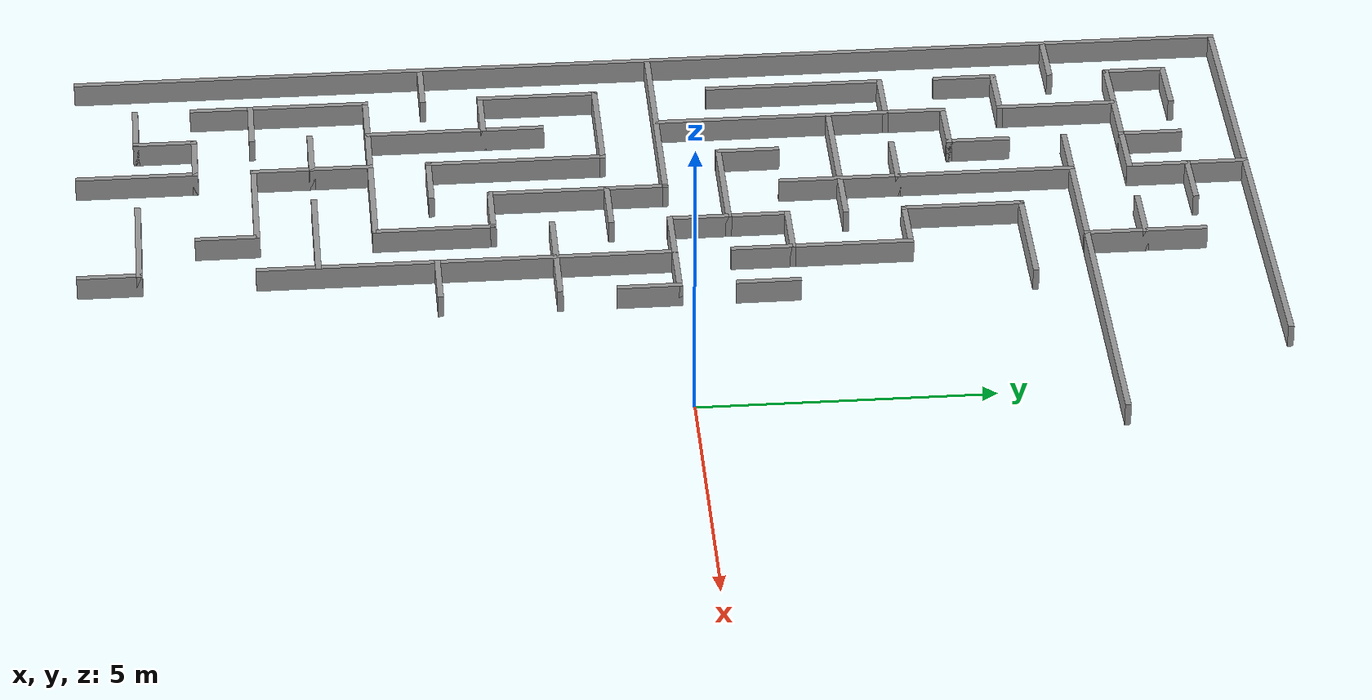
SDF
<sdf version="1.7">
 <model name="turtlebot3_maze_3">
  <link name="Wall_10">
   <collision name="Wall_10_Collision">
    <geometry><box><size>1.1 0.1 0.4</size></box></geometry>
    <pose>0 0 0.2 0 -0 0</pose>
   </collision>
   <visual name="Wall_10_Visual">
    <pose>0 0 0.2 0 -0 0</pose>
    <geometry><box><size>1.1 0.1 0.4</size></box></geometry>
    <material>
     <script><uri>file://media/materials/scripts/gazebo.material</uri><name>Gazebo/Grey</name></script>
     <ambient>1 1 1 1</ambient>
    </material>
    <meta><layer>0</layer></meta>
   </visual>
   <pose>-3 1.5 0 0 -0 1.5708</pose>
  </link>
  <link name="Wall_100">
   <collision name="Wall_100_Collision">
    <geometry><box><size>4.1 0.1 0.4</size></box></geometry>
    <pose>0 0 0.2 0 -0 0</pose>
   </collision>
   <visual name="Wall_100_Visual">
    <pose>0 0 0.2 0 -0 0</pose>
    <geometry><box><size>4.1 0.1 0.4</size></box></geometry>
    <material>
     <script><uri>file://media/materials/scripts/gazebo.material</uri><name>Gazebo/Grey</name></script>
     <ambient>1 1 1 1</ambient>
    </material>
    <meta><layer>0</layer></meta>
   </visual>
   <pose>-8 0 0 0 -0 3.14159</pose>
  </link>
  <link name="Wall_102">
   <collision name="Wall_102_Collision">
    <geometry><box><size>1.1 0.1 0.4</size></box></geometry>
    <pose>0 0 0.2 0 -0 0</pose>
   </collision>
   <visual name="Wall_102_Visual">
    <pose>0 0 0.2 0 -0 0</pose>
    <geometry><box><size>1.1 0.1 0.4</size></box></geometry>
    <material>
     <script><uri>file://media/materials/scripts/gazebo.material</uri><name>Gazebo/Grey</name></script>
     <ambient>1 1 1 1</ambient>
    </material>
    <meta><layer>0</layer></meta>
   </visual>
   <pose>-6.5 -4 0 0 -0 3.14159</pose>
  </link>
  <link name="Wall_103">
   <collision name="Wall_103_Collision">
    <geometry><box><size>3.1 0.1 0.4</size></box></geometry>
    <pose>0 0 0.2 0 -0 0</pose>
   </collision>
   <visual name="Wall_103_Visual">
    <pose>0 0 0.2 0 -0 0</pose>
    <geometry><box><size>3.1 0.1 0.4</size></box></geometry>
    <material>
     <script><uri>file://media/materials/scripts/gazebo.material</uri><name>Gazebo/Grey</name></script>
     <ambient>1 1 1 1</ambient>
    </material>
    <meta><layer>0</layer></meta>
   </visual>
   <pose>-7 -2.5 0 0 -0 1.5708</pose>
  </link>
  <link name="Wall_104">
   <collision name="Wall_104_Collision">
    <geometry><box><size>2.1 0.1 0.4</size></box></geometry>
    <pose>0 0 0.2 0 -0 0</pose>
   </collision>
   <visual name="Wall_104_Visual">
    <pose>0 0 0.2 0 -0 0</pose>
    <geometry><box><size>2.1 0.1 0.4</size></box></geometry>
    <material>
     <script><uri>file://media/materials/scripts/gazebo.material</uri><name>Gazebo/Grey</name></script>
     <ambient>1 1 1 1</ambient>
    </material>
    <meta><layer>0</layer></meta>
   </visual>
   <pose>-8 -1 0 0 -0 3.14159</pose>
  </link>
  <link name="Wall_105">
   <collision name="Wall_105_Collision">
    <geometry><box><size>2.1 0.1 0.4</size></box></geometry>
    <pose>0 0 0.2 0 -0 0</pose>
   </collision>
   <visual name="Wall_105_Visual">
    <pose>0 0 0.2 0 -0 0</pose>
    <geometry><box><size>2.1 0.1 0.4</size></box></geometry>
    <material>
     <script><uri>file://media/materials/scripts/gazebo.material</uri><name>Gazebo/Grey</name></script>
     <ambient>1 1 1 1</ambient>
    </material>
    <meta><layer>0</layer></meta>
   </visual>
   <pose>-9 -2 0 0 -0 -1.5708</pose>
  </link>
  <link name="Wall_106">
   <collision name="Wall_106_Collision">
    <geometry><box><size>1.1 0.1 0.4</size></box></geometry>
    <pose>0 0 0.2 0 -0 0</pose>
   </collision>
   <visual name="Wall_106_Visual">
    <pose>0 0 0.2 0 -0 0</pose>
    <geometry><box><size>1.1 0.1 0.4</size></box></geometry>
    <material>
     <script><uri>file://media/materials/scripts/gazebo.material</uri><name>Gazebo/Grey</name></script>
     <ambient>1 1 1 1</ambient>
    </material>
    <meta><layer>0</layer></meta>
   </visual>
   <pose>-8.5 -3 0 0 -0 0</pose>
  </link>
  <link name="Wall_108">
   <collision name="Wall_108_Collision">
    <geometry><box><size>3.1 0.1 0.4</size></box></geometry>
    <pose>0 0 0.2 0 -0 0</pose>
   </collision>
   <visual name="Wall_108_Visual">
    <pose>0 0 0.2 0 -0 0</pose>
    <geometry><box><size>3.1 0.1 0.4</size></box></geometry>
    <material>
     <script><uri>file://media/materials/scripts/gazebo.material</uri><name>Gazebo/Grey</name></script>
     <ambient>1 1 1 1</ambient>
    </material>
    <meta><layer>0</layer></meta>
   </visual>
   <pose>-8 -3.5 0 0 -0 -1.5708</pose>
  </link>
  <link name="Wall_110">
   <collision name="Wall_110_Collision">
    <geometry><box><size>1.1 0.1 0.4</size></box></geometry>
    <pose>0 0 0.2 0 -0 0</pose>
   </collision>
   <visual name="Wall_110_Visual">
    <pose>0 0 0.2 0 -0 0</pose>
    <geometry><box><size>1.1 0.1 0.4</size></box></geometry>
    <material>
     <script><uri>file://media/materials/scripts/gazebo.material</uri><name>Gazebo/Grey</name></script>
     <ambient>1 1 1 1</ambient>
    </material>
    <meta><layer>0</layer></meta>
   </visual>
   <pose>-9.5 -4 0 0 -0 0</pose>
  </link>
  <link name="Wall_112">
   <collision name="Wall_112_Collision">
    <geometry><box><size>1.1 0.1 0.4</size></box></geometry>
    <pose>0 0 0.2 0 -0 0</pose>
   </collision>
   <visual name="Wall_112_Visual">
    <pose>0 0 0.2 0 -0 0</pose>
    <geometry><box><size>1.1 0.1 0.4</size></box></geometry>
    <material>
     <script><uri>file://media/materials/scripts/gazebo.material</uri><name>Gazebo/Grey</name></script>
     <ambient>1 1 1 1</ambient>
    </material>
    <meta><layer>0</layer></meta>
   </visual>
   <pose>-8.5 -7 0 0 -0 0</pose>
  </link>
  <link name="Wall_114">
   <collision name="Wall_114_Collision">
    <geometry><box><size>2.1 0.1 0.4</size></box></geometry>
    <pose>0 0 0.2 0 -0 0</pose>
   </collision>
   <visual name="Wall_114_Visual">
    <pose>0 0 0.2 0 -0 0</pose>
    <geometry><box><size>2.1 0.1 0.4</size></box></geometry>
    <material>
     <script><uri>file://media/materials/scripts/gazebo.material</uri><name>Gazebo/Grey</name></script>
     <ambient>1 1 1 1</ambient>
    </material>
    <meta><layer>0</layer></meta>
   </visual>
   <pose>-7 -6 0 0 -0 -1.5708</pose>
  </link>
  <link name="Wall_115">
   <collision name="Wall_115_Collision">
    <geometry><box><size>2.1 0.1 0.4</size></box></geometry>
    <pose>0 0 0.2 0 -0 0</pose>
   </collision>
   <visual name="Wall_115_Visual">
    <pose>0 0 0.2 0 -0 0</pose>
    <geometry><box><size>2.1 0.1 0.4</size></box></geometry>
    <material>
     <script><uri>file://media/materials/scripts/gazebo.material</uri><name>Gazebo/Grey</name></script>
     <ambient>1 1 1 1</ambient>
    </material>
    <meta><layer>0</layer></meta>
   </visual>
   <pose>-6 -7 0 0 -0 0</pose>
  </link>
  <link name="Wall_116">
   <collision name="Wall_116_Collision">
    <geometry><box><size>1.1 0.1 0.4</size></box></geometry>
    <pose>0 0 0.2 0 -0 0</pose>
   </collision>
   <visual name="Wall_116_Visual">
    <pose>0 0 0.2 0 -0 0</pose>
    <geometry><box><size>1.1 0.1 0.4</size></box></geometry>
    <material>
     <script><uri>file://media/materials/scripts/gazebo.material</uri><name>Gazebo/Grey</name></script>
     <ambient>1 1 1 1</ambient>
    </material>
    <meta><layer>0</layer></meta>
   </visual>
   <pose>-5 -7.5 0 0 -0 -1.5708</pose>
  </link>
  <link name="Wall_118">
   <collision name="Wall_118_Collision">
    <geometry><box><size>1.1 0.1 0.4</size></box></geometry>
    <pose>0 0 0.2 0 -0 0</pose>
   </collision>
   <visual name="Wall_118_Visual">
    <pose>0 0 0.2 0 -0 0</pose>
    <geometry><box><size>1.1 0.1 0.4</size></box></geometry>
    <material>
     <script><uri>file://media/materials/scripts/gazebo.material</uri><name>Gazebo/Grey</name></script>
     <ambient>1 1 1 1</ambient>
    </material>
    <meta><layer>0</layer></meta>
   </visual>
   <pose>-7.5 -6 0 0 -0 0</pose>
  </link>
  <link name="Wall_120">
   <collision name="Wall_120_Collision">
    <geometry><box><size>2.1 0.1 0.4</size></box></geometry>
    <pose>0 0 0.2 0 -0 0</pose>
   </collision>
   <visual name="Wall_120_Visual">
    <pose>0 0 0.2 0 -0 0</pose>
    <geometry><box><size>2.1 0.1 0.4</size></box></geometry>
    <material>
     <script><uri>file://media/materials/scripts/gazebo.material</uri><name>Gazebo/Grey</name></script>
     <ambient>1 1 1 1</ambient>
    </material>
    <meta><layer>0</layer></meta>
   </visual>
   <pose>-5 -6 0 0 -0 0</pose>
  </link>
  <link name="Wall_122">
   <collision name="Wall_122_Collision">
    <geometry><box><size>1.10012 0.1 0.4</size></box></geometry>
    <pose>0 0 0.2 0 -0 0</pose>
   </collision>
   <visual name="Wall_122_Visual">
    <pose>0 0 0.2 0 -0 0</pose>
    <geometry><box><size>1.10012 0.1 0.4</size></box></geometry>
    <material>
     <script><uri>file://media/materials/scripts/gazebo.material</uri><name>Gazebo/Grey</name></script>
     <ambient>1 1 1 1</ambient>
    </material>
    <meta><layer>0</layer></meta>
   </visual>
   <pose>-3 -0.5 0 0 -0 1.5708</pose>
  </link>
  <link name="Wall_123">
   <collision name="Wall_123_Collision">
    <geometry><box><size>2.1 0.1 0.4</size></box></geometry>
    <pose>0 0 0.2 0 -0 0</pose>
   </collision>
   <visual name="Wall_123_Visual">
    <pose>0 0 0.2 0 -0 0</pose>
    <geometry><box><size>2.1 0.1 0.4</size></box></geometry>
    <material>
     <script><uri>file://media/materials/scripts/gazebo.material</uri><name>Gazebo/Grey</name></script>
     <ambient>1 1 1 1</ambient>
    </material>
    <meta><layer>0</layer></meta>
   </visual>
   <pose>-4 0 0 0 -0 3.14159</pose>
  </link>
  <link name="Wall_124">
   <collision name="Wall_124_Collision">
    <geometry><box><size>2.1 0.1 0.4</size></box></geometry>
    <pose>0 0 0.2 0 -0 0</pose>
   </collision>
   <visual name="Wall_124_Visual">
    <pose>0 0 0.2 0 -0 0</pose>
    <geometry><box><size>2.1 0.1 0.4</size></box></geometry>
    <material>
     <script><uri>file://media/materials/scripts/gazebo.material</uri><name>Gazebo/Grey</name></script>
     <ambient>1 1 1 1</ambient>
    </material>
    <meta><layer>0</layer></meta>
   </visual>
   <pose>-5 1 0 0 -0 1.5708</pose>
  </link>
  <link name="Wall_125">
   <collision name="Wall_125_Collision">
    <geometry><box><size>1.1 0.1 0.4</size></box></geometry>
    <pose>0 0 0.2 0 -0 0</pose>
   </collision>
   <visual name="Wall_125_Visual">
    <pose>0 0 0.2 0 -0 0</pose>
    <geometry><box><size>1.1 0.1 0.4</size></box></geometry>
    <material>
     <script><uri>file://media/materials/scripts/gazebo.material</uri><name>Gazebo/Grey</name></script>
     <ambient>1 1 1 1</ambient>
    </material>
    <meta><layer>0</layer></meta>
   </visual>
   <pose>-4.5 2 0 0 -0 0</pose>
  </link>
  <link name="Wall_127">
   <collision name="Wall_127_Collision">
    <geometry><box><size>1.1 0.1 0.4</size></box></geometry>
    <pose>0 0 0.2 0 -0 0</pose>
   </collision>
   <visual name="Wall_127_Visual">
    <pose>0 0 0.2 0 -0 0</pose>
    <geometry><box><size>1.1 0.1 0.4</size></box></geometry>
    <material>
     <script><uri>file://media/materials/scripts/gazebo.material</uri><name>Gazebo/Grey</name></script>
     <ambient>1 1 1 1</ambient>
    </material>
    <meta><layer>0</layer></meta>
   </visual>
   <pose>-7 1.5 0 0 -0 -1.5708</pose>
  </link>
  <link name="Wall_128">
   <collision name="Wall_128_Collision">
    <geometry><box><size>2.1 0.1 0.4</size></box></geometry>
    <pose>0 0 0.2 0 -0 0</pose>
   </collision>
   <visual name="Wall_128_Visual">
    <pose>0 0 0.2 0 -0 0</pose>
    <geometry><box><size>2.1 0.1 0.4</size></box></geometry>
    <material>
     <script><uri>file://media/materials/scripts/gazebo.material</uri><name>Gazebo/Grey</name></script>
     <ambient>1 1 1 1</ambient>
    </material>
    <meta><layer>0</layer></meta>
   </visual>
   <pose>-6 1 0 0 -0 0</pose>
  </link>
  <link name="Wall_130">
   <collision name="Wall_130_Collision">
    <geometry><box><size>5.1 0.1 0.4</size></box></geometry>
    <pose>0 0 0.2 0 -0 0</pose>
   </collision>
   <visual name="Wall_130_Visual">
    <pose>0 0 0.2 0 -0 0</pose>
    <geometry><box><size>5.1 0.1 0.4</size></box></geometry>
    <material>
     <script><uri>file://media/materials/scripts/gazebo.material</uri><name>Gazebo/Grey</name></script>
     <ambient>1 1 1 1</ambient>
    </material>
    <meta><layer>0</layer></meta>
   </visual>
   <pose>-8 2.5 0 0 -0 1.5708</pose>
  </link>
  <link name="Wall_131">
   <collision name="Wall_131_Collision">
    <geometry><box><size>1.1 0.1 0.4</size></box></geometry>
    <pose>0 0 0.2 0 -0 0</pose>
   </collision>
   <visual name="Wall_131_Visual">
    <pose>0 0 0.2 0 -0 0</pose>
    <geometry><box><size>1.1 0.1 0.4</size></box></geometry>
    <material>
     <script><uri>file://media/materials/scripts/gazebo.material</uri><name>Gazebo/Grey</name></script>
     <ambient>1 1 1 1</ambient>
    </material>
    <meta><layer>0</layer></meta>
   </visual>
   <pose>-7.5 5 0 0 -0 0</pose>
  </link>
  <link name="Wall_132">
   <collision name="Wall_132_Collision">
    <geometry><box><size>1.1 0.1 0.4</size></box></geometry>
    <pose>0 0 0.2 0 -0 0</pose>
   </collision>
   <visual name="Wall_132_Visual">
    <pose>0 0 0.2 0 -0 0</pose>
    <geometry><box><size>1.1 0.1 0.4</size></box></geometry>
    <material>
     <script><uri>file://media/materials/scripts/gazebo.material</uri><name>Gazebo/Grey</name></script>
     <ambient>1 1 1 1</ambient>
    </material>
    <meta><layer>0</layer></meta>
   </visual>
   <pose>-7 5.5 0 0 -0 1.5708</pose>
  </link>
  <link name="Wall_134">
   <collision name="Wall_134_Collision">
    <geometry><box><size>1.1 0.1 0.4</size></box></geometry>
    <pose>0 0 0.2 0 -0 0</pose>
   </collision>
   <visual name="Wall_134_Visual">
    <pose>0 0 0.2 0 -0 0</pose>
    <geometry><box><size>1.1 0.1 0.4</size></box></geometry>
    <material>
     <script><uri>file://media/materials/scripts/gazebo.material</uri><name>Gazebo/Grey</name></script>
     <ambient>1 1 1 1</ambient>
    </material>
    <meta><layer>0</layer></meta>
   </visual>
   <pose>-8.5 4 0 0 -0 3.14159</pose>
  </link>
  <link name="Wall_135">
   <collision name="Wall_135_Collision">
    <geometry><box><size>3.1 0.1 0.4</size></box></geometry>
    <pose>0 0 0.2 0 -0 0</pose>
   </collision>
   <visual name="Wall_135_Visual">
    <pose>0 0 0.2 0 -0 0</pose>
    <geometry><box><size>3.1 0.1 0.4</size></box></geometry>
    <material>
     <script><uri>file://media/materials/scripts/gazebo.material</uri><name>Gazebo/Grey</name></script>
     <ambient>1 1 1 1</ambient>
    </material>
    <meta><layer>0</layer></meta>
   </visual>
   <pose>-9 2.5 0 0 -0 -1.5708</pose>
  </link>
  <link name="Wall_137">
   <collision name="Wall_137_Collision">
    <geometry><box><size>3.1 0.1 0.4</size></box></geometry>
    <pose>0 0 0.2 0 -0 0</pose>
   </collision>
   <visual name="Wall_137_Visual">
    <pose>0 0 0.2 0 -0 0</pose>
    <geometry><box><size>3.1 0.1 0.4</size></box></geometry>
    <material>
     <script><uri>file://media/materials/scripts/gazebo.material</uri><name>Gazebo/Grey</name></script>
     <ambient>1 1 1 1</ambient>
    </material>
    <meta><layer>0</layer></meta>
   </visual>
   <pose>-6.5 3 0 0 -0 0</pose>
  </link>
  <link name="Wall_139">
   <collision name="Wall_139_Collision">
    <geometry><box><size>5.1 0.1 0.4</size></box></geometry>
    <pose>0 0 0.2 0 -0 0</pose>
   </collision>
   <visual name="Wall_139_Visual">
    <pose>0 0 0.2 0 -0 0</pose>
    <geometry><box><size>5.1 0.1 0.4</size></box></geometry>
    <material>
     <script><uri>file://media/materials/scripts/gazebo.material</uri><name>Gazebo/Grey</name></script>
     <ambient>1 1 1 1</ambient>
    </material>
    <meta><layer>0</layer></meta>
   </visual>
   <pose>-6 4.5 0 0 -0 1.5708</pose>
  </link>
  <link name="Wall_141">
   <collision name="Wall_141_Collision">
    <geometry><box><size>1.1 0.1 0.4</size></box></geometry>
    <pose>0 0 0.2 0 -0 0</pose>
   </collision>
   <visual name="Wall_141_Visual">
    <pose>0 0 0.2 0 -0 0</pose>
    <geometry><box><size>1.1 0.1 0.4</size></box></geometry>
    <material>
     <script><uri>file://media/materials/scripts/gazebo.material</uri><name>Gazebo/Grey</name></script>
     <ambient>1 1 1 1</ambient>
    </material>
    <meta><layer>0</layer></meta>
   </visual>
   <pose>-6.5 4 0 0 -0 0</pose>
  </link>
  <link name="Wall_143">
   <collision name="Wall_143_Collision">
    <geometry><box><size>8.1 0.1 0.4</size></box></geometry>
    <pose>0 0 0.2 0 -0 0</pose>
   </collision>
   <visual name="Wall_143_Visual">
    <pose>0 0 0.2 0 -0 0</pose>
    <geometry><box><size>8.1 0.1 0.4</size></box></geometry>
    <material>
     <script><uri>file://media/materials/scripts/gazebo.material</uri><name>Gazebo/Grey</name></script>
     <ambient>1 1 1 1</ambient>
    </material>
    <meta><layer>0</layer></meta>
   </visual>
   <pose>-3 7 0 0 -0 0</pose>
  </link>
  <link name="Wall_146">
   <collision name="Wall_146_Collision">
    <geometry><box><size>2.1 0.1 0.4</size></box></geometry>
    <pose>0 0 0.2 0 -0 0</pose>
   </collision>
   <visual name="Wall_146_Visual">
    <pose>0 0 0.2 0 -0 0</pose>
    <geometry><box><size>2.1 0.1 0.4</size></box></geometry>
    <material>
     <script><uri>file://media/materials/scripts/gazebo.material</uri><name>Gazebo/Grey</name></script>
     <ambient>1 1 1 1</ambient>
    </material>
    <meta><layer>0</layer></meta>
   </visual>
   <pose>-4 6 0 0 -0 3.14159</pose>
  </link>
  <link name="Wall_148">
   <collision name="Wall_148_Collision">
    <geometry><box><size>1.1 0.1 0.4</size></box></geometry>
    <pose>0 0 0.2 0 -0 0</pose>
   </collision>
   <visual name="Wall_148_Visual">
    <pose>0 0 0.2 0 -0 0</pose>
    <geometry><box><size>1.1 0.1 0.4</size></box></geometry>
    <material>
     <script><uri>file://media/materials/scripts/gazebo.material</uri><name>Gazebo/Grey</name></script>
     <ambient>1 1 1 1</ambient>
    </material>
    <meta><layer>0</layer></meta>
   </visual>
   <pose>-4.5 4 0 0 -0 0</pose>
  </link>
  <link name="Wall_149">
   <collision name="Wall_149_Collision">
    <geometry><box><size>3.1 0.1 0.4</size></box></geometry>
    <pose>0 0 0.2 0 -0 0</pose>
   </collision>
   <visual name="Wall_149_Visual">
    <pose>0 0 0.2 0 -0 0</pose>
    <geometry><box><size>3.1 0.1 0.4</size></box></geometry>
    <material>
     <script><uri>file://media/materials/scripts/gazebo.material</uri><name>Gazebo/Grey</name></script>
     <ambient>1 1 1 1</ambient>
    </material>
    <meta><layer>0</layer></meta>
   </visual>
   <pose>-4 2.5 0 0 -0 -1.5708</pose>
  </link>
  <link name="Wall_159">
   <collision name="Wall_159_Collision">
    <geometry><box><size>1.1 0.1 0.4</size></box></geometry>
    <pose>0 0 0.2 0 -0 0</pose>
   </collision>
   <visual name="Wall_159_Visual">
    <pose>0 0 0.2 0 -0 0</pose>
    <geometry><box><size>1.1 0.1 0.4</size></box></geometry>
    <material>
     <script><uri>file://media/materials/scripts/gazebo.material</uri><name>Gazebo/Grey</name></script>
     <ambient>1 1 1 1</ambient>
    </material>
    <meta><layer>0</layer></meta>
   </visual>
   <pose>-9.5 7 0 0 -0 0</pose>
  </link>
  <link name="Wall_161">
   <collision name="Wall_161_Collision">
    <geometry><box><size>1.1 0.1 0.4</size></box></geometry>
    <pose>0 0 0.2 0 -0 0</pose>
   </collision>
   <visual name="Wall_161_Visual">
    <pose>0 0 0.2 0 -0 0</pose>
    <geometry><box><size>1.1 0.1 0.4</size></box></geometry>
    <material>
     <script><uri>file://media/materials/scripts/gazebo.material</uri><name>Gazebo/Grey</name></script>
     <ambient>1 1 1 1</ambient>
    </material>
    <meta><layer>0</layer></meta>
   </visual>
   <pose>-8.5 9 0 0 -0 3.14159</pose>
  </link>
  <link name="Wall_162">
   <collision name="Wall_162_Collision">
    <geometry><box><size>1.1 0.1 0.4</size></box></geometry>
    <pose>0 0 0.2 0 -0 0</pose>
   </collision>
   <visual name="Wall_162_Visual">
    <pose>0 0 0.2 0 -0 0</pose>
    <geometry><box><size>1.1 0.1 0.4</size></box></geometry>
    <material>
     <script><uri>file://media/materials/scripts/gazebo.material</uri><name>Gazebo/Grey</name></script>
     <ambient>1 1 1 1</ambient>
    </material>
    <meta><layer>0</layer></meta>
   </visual>
   <pose>-9 8.5 0 0 -0 -1.5708</pose>
  </link>
  <link name="Wall_163">
   <collision name="Wall_163_Collision">
    <geometry><box><size>3.1 0.1 0.4</size></box></geometry>
    <pose>0 0 0.2 0 -0 0</pose>
   </collision>
   <visual name="Wall_163_Visual">
    <pose>0 0 0.2 0 -0 0</pose>
    <geometry><box><size>3.1 0.1 0.4</size></box></geometry>
    <material>
     <script><uri>file://media/materials/scripts/gazebo.material</uri><name>Gazebo/Grey</name></script>
     <ambient>1 1 1 1</ambient>
    </material>
    <meta><layer>0</layer></meta>
   </visual>
   <pose>-7.5 8 0 0 -0 0</pose>
  </link>
  <link name="Wall_164">
   <collision name="Wall_164_Collision">
    <geometry><box><size>2.1 0.1 0.4</size></box></geometry>
    <pose>0 0 0.2 0 -0 0</pose>
   </collision>
   <visual name="Wall_164_Visual">
    <pose>0 0 0.2 0 -0 0</pose>
    <geometry><box><size>2.1 0.1 0.4</size></box></geometry>
    <material>
     <script><uri>file://media/materials/scripts/gazebo.material</uri><name>Gazebo/Grey</name></script>
     <ambient>1 1 1 1</ambient>
    </material>
    <meta><layer>0</layer></meta>
   </visual>
   <pose>-6 9 0 0 -0 1.5708</pose>
  </link>
  <link name="Wall_166">
   <collision name="Wall_166_Collision">
    <geometry><box><size>1.1 0.1 0.4</size></box></geometry>
    <pose>0 0 0.2 0 -0 0</pose>
   </collision>
   <visual name="Wall_166_Visual">
    <pose>0 0 0.2 0 -0 0</pose>
    <geometry><box><size>1.1 0.1 0.4</size></box></geometry>
    <material>
     <script><uri>file://media/materials/scripts/gazebo.material</uri><name>Gazebo/Grey</name></script>
     <ambient>1 1 1 1</ambient>
    </material>
    <meta><layer>0</layer></meta>
   </visual>
   <pose>-7 8.5 0 0 -0 -1.5708</pose>
  </link>
  <link name="Wall_168">
   <collision name="Wall_168_Collision">
    <geometry><box><size>2.1 0.1 0.4</size></box></geometry>
    <pose>0 0 0.2 0 -0 0</pose>
   </collision>
   <visual name="Wall_168_Visual">
    <pose>0 0 0.2 0 -0 0</pose>
    <geometry><box><size>2.1 0.1 0.4</size></box></geometry>
    <material>
     <script><uri>file://media/materials/scripts/gazebo.material</uri><name>Gazebo/Grey</name></script>
     <ambient>1 1 1 1</ambient>
    </material>
    <meta><layer>0</layer></meta>
   </visual>
   <pose>-8 7 0 0 -0 -1.5708</pose>
  </link>
  <link name="Wall_169">
   <collision name="Wall_169_Collision">
    <geometry><box><size>1.1 0.1 0.4</size></box></geometry>
    <pose>0 0 0.2 0 -0 0</pose>
   </collision>
   <visual name="Wall_169_Visual">
    <pose>0 0 0.2 0 -0 0</pose>
    <geometry><box><size>1.1 0.1 0.4</size></box></geometry>
    <material>
     <script><uri>file://media/materials/scripts/gazebo.material</uri><name>Gazebo/Grey</name></script>
     <ambient>1 1 1 1</ambient>
    </material>
    <meta><layer>0</layer></meta>
   </visual>
   <pose>-8.5 6 0 0 -0 3.14159</pose>
  </link>
  <link name="Wall_170">
   <collision name="Wall_170_Collision">
    <geometry><box><size>1.1 0.1 0.4</size></box></geometry>
    <pose>0 0 0.2 0 -0 0</pose>
   </collision>
   <visual name="Wall_170_Visual">
    <pose>0 0 0.2 0 -0 0</pose>
    <geometry><box><size>1.1 0.1 0.4</size></box></geometry>
    <material>
     <script><uri>file://media/materials/scripts/gazebo.material</uri><name>Gazebo/Grey</name></script>
     <ambient>1 1 1 1</ambient>
    </material>
    <meta><layer>0</layer></meta>
   </visual>
   <pose>-9 5.5 0 0 -0 -1.5708</pose>
  </link>
  <link name="Wall_172">
   <collision name="Wall_172_Collision">
    <geometry><box><size>1.1 0.1 0.4</size></box></geometry>
    <pose>0 0 0.2 0 -0 0</pose>
   </collision>
   <visual name="Wall_172_Visual">
    <pose>0 0 0.2 0 -0 0</pose>
    <geometry><box><size>1.1 0.1 0.4</size></box></geometry>
    <material>
     <script><uri>file://media/materials/scripts/gazebo.material</uri><name>Gazebo/Grey</name></script>
     <ambient>1 1 1 1</ambient>
    </material>
    <meta><layer>0</layer></meta>
   </visual>
   <pose>-5.5 9 0 0 -0 0</pose>
  </link>
  <link name="Wall_174">
   <collision name="Wall_174_Collision">
    <geometry><box><size>2.1 0.1 0.4</size></box></geometry>
    <pose>0 0 0.2 0 -0 0</pose>
   </collision>
   <visual name="Wall_174_Visual">
    <pose>0 0 0.2 0 -0 0</pose>
    <geometry><box><size>2.1 0.1 0.4</size></box></geometry>
    <material>
     <script><uri>file://media/materials/scripts/gazebo.material</uri><name>Gazebo/Grey</name></script>
     <ambient>1 1 1 1</ambient>
    </material>
    <meta><layer>0</layer></meta>
   </visual>
   <pose>-4 8 0 0 -0 -1.5708</pose>
  </link>
  <link name="Wall_176">
   <collision name="Wall_176_Collision">
    <geometry><box><size>1.1 0.1 0.4</size></box></geometry>
    <pose>0 0 0.2 0 -0 0</pose>
   </collision>
   <visual name="Wall_176_Visual">
    <pose>0 0 0.2 0 -0 0</pose>
    <geometry><box><size>1.1 0.1 0.4</size></box></geometry>
    <material>
     <script><uri>file://media/materials/scripts/gazebo.material</uri><name>Gazebo/Grey</name></script>
     <ambient>1 1 1 1</ambient>
    </material>
    <meta><layer>0</layer></meta>
   </visual>
   <pose>-4.5 8 0 0 -0 0</pose>
  </link>
  <link name="Wall_178">
   <collision name="Wall_178_Collision">
    <geometry><box><size>9.1 0.1 0.4</size></box></geometry>
    <pose>0 0 0.2 0 -0 0</pose>
   </collision>
   <visual name="Wall_178_Visual">
    <pose>0 0 0.2 0 -0 0</pose>
    <geometry><box><size>9.1 0.1 0.4</size></box></geometry>
    <material>
     <script><uri>file://media/materials/scripts/gazebo.material</uri><name>Gazebo/Grey</name></script>
     <ambient>1 1 1 1</ambient>
    </material>
    <meta><layer>0</layer></meta>
   </visual>
   <pose>-5.5 10 0 0 -0 0</pose>
  </link>
  <link name="Wall_192">
   <collision name="Wall_192_Collision">
    <geometry><box><size>2.1 0.1 0.4</size></box></geometry>
    <pose>0 0 0.2 0 -0 0</pose>
   </collision>
   <visual name="Wall_192_Visual">
    <pose>0 0 0.2 0 -0 0</pose>
    <geometry><box><size>2.1 0.1 0.4</size></box></geometry>
    <material>
     <script><uri>file://media/materials/scripts/gazebo.material</uri><name>Gazebo/Grey</name></script>
     <ambient>1 1 1 1</ambient>
    </material>
    <meta><layer>0</layer></meta>
   </visual>
   <pose>-5 5 0 0 -0 1.5708</pose>
  </link>
  <link name="Wall_297">
   <collision name="Wall_297_Collision">
    <geometry><box><size>1.1 0.1 0.4</size></box></geometry>
    <pose>0 0 0.2 0 -0 0</pose>
   </collision>
   <visual name="Wall_297_Visual">
    <pose>0 0 0.2 0 -0 0</pose>
    <geometry><box><size>1.1 0.1 0.4</size></box></geometry>
    <material>
     <script><uri>file://media/materials/scripts/gazebo.material</uri><name>Gazebo/Grey</name></script>
     <ambient>1 1 1 1</ambient>
    </material>
    <meta><layer>0</layer></meta>
   </visual>
   <pose>-5.5 -1 0 0 -0 0</pose>
  </link>
  <link name="Wall_52">
   <collision name="Wall_52_Collision">
    <geometry><box><size>7.1 0.1 0.4</size></box></geometry>
    <pose>0 0 0.2 0 -0 0</pose>
   </collision>
   <visual name="Wall_52_Visual">
    <pose>0 0 0.2 0 -0 0</pose>
    <geometry><box><size>7.1 0.1 0.4</size></box></geometry>
    <material>
     <script><uri>file://media/materials/scripts/gazebo.material</uri><name>Gazebo/Grey</name></script>
     <ambient>1 1 1 1</ambient>
    </material>
    <meta><layer>0</layer></meta>
   </visual>
   <pose>-4 -3.5 0 0 -0 1.5708</pose>
  </link>
  <link name="Wall_61">
   <collision name="Wall_61_Collision">
    <geometry><box><size>20.1 0.1 0.4</size></box></geometry>
    <pose>0 0 0.2 0 -0 0</pose>
   </collision>
   <visual name="Wall_61_Visual">
    <pose>0 0 0.2 0 -0 0</pose>
    <geometry><box><size>20.1 0.1 0.4</size></box></geometry>
    <material>
     <script><uri>file://media/materials/scripts/gazebo.material</uri><name>Gazebo/Grey</name></script>
     <ambient>1 1 1 1</ambient>
    </material>
    <meta><layer>0</layer></meta>
   </visual>
   <pose>-10 0 0 0 -0 -1.5708</pose>
  </link>
  <link name="Wall_63">
   <collision name="Wall_63_Collision">
    <geometry><box><size>1.1 0.1 0.4</size></box></geometry>
    <pose>0 0 0.2 0 -0 0</pose>
   </collision>
   <visual name="Wall_63_Visual">
    <pose>0 0 0.2 0 -0 0</pose>
    <geometry><box><size>1.1 0.1 0.4</size></box></geometry>
    <material>
     <script><uri>file://media/materials/scripts/gazebo.material</uri><name>Gazebo/Grey</name></script>
     <ambient>1 1 1 1</ambient>
    </material>
    <meta><layer>0</layer></meta>
   </visual>
   <pose>-8.5 -9 0 0 -0 0</pose>
  </link>
  <link name="Wall_64">
   <collision name="Wall_64_Collision">
    <geometry><box><size>1.1 0.1 0.4</size></box></geometry>
    <pose>0 0 0.2 0 -0 0</pose>
   </collision>
   <visual name="Wall_64_Visual">
    <pose>0 0 0.2 0 -0 0</pose>
    <geometry><box><size>1.1 0.1 0.4</size></box></geometry>
    <material>
     <script><uri>file://media/materials/scripts/gazebo.material</uri><name>Gazebo/Grey</name></script>
     <ambient>1 1 1 1</ambient>
    </material>
    <meta><layer>0</layer></meta>
   </visual>
   <pose>-8 -8.5 0 0 -0 1.5708</pose>
  </link>
  <link name="Wall_65">
   <collision name="Wall_65_Collision">
    <geometry><box><size>1.1 0.1 0.4</size></box></geometry>
    <pose>0 0 0.2 0 -0 0</pose>
   </collision>
   <visual name="Wall_65_Visual">
    <pose>0 0 0.2 0 -0 0</pose>
    <geometry><box><size>1.1 0.1 0.4</size></box></geometry>
    <material>
     <script><uri>file://media/materials/scripts/gazebo.material</uri><name>Gazebo/Grey</name></script>
     <ambient>1 1 1 1</ambient>
    </material>
    <meta><layer>0</layer></meta>
   </visual>
   <pose>-7.5 -8 0 0 -0 0</pose>
  </link>
  <link name="Wall_66">
   <collision name="Wall_66_Collision">
    <geometry><box><size>2.1 0.1 0.4</size></box></geometry>
    <pose>0 0 0.2 0 -0 0</pose>
   </collision>
   <visual name="Wall_66_Visual">
    <pose>0 0 0.2 0 -0 0</pose>
    <geometry><box><size>2.1 0.1 0.4</size></box></geometry>
    <material>
     <script><uri>file://media/materials/scripts/gazebo.material</uri><name>Gazebo/Grey</name></script>
     <ambient>1 1 1 1</ambient>
    </material>
    <meta><layer>0</layer></meta>
   </visual>
   <pose>-7 -9 0 0 -0 -1.5708</pose>
  </link>
  <link name="Wall_68">
   <collision name="Wall_68_Collision">
    <geometry><box><size>2.1 0.1 0.4</size></box></geometry>
    <pose>0 0 0.2 0 -0 0</pose>
   </collision>
   <visual name="Wall_68_Visual">
    <pose>0 0 0.2 0 -0 0</pose>
    <geometry><box><size>2.1 0.1 0.4</size></box></geometry>
    <material>
     <script><uri>file://media/materials/scripts/gazebo.material</uri><name>Gazebo/Grey</name></script>
     <ambient>1 1 1 1</ambient>
    </material>
    <meta><layer>0</layer></meta>
   </visual>
   <pose>-5 -9 0 0 -0 0</pose>
  </link>
  <link name="Wall_69">
   <collision name="Wall_69_Collision">
    <geometry><box><size>1.1 0.1 0.4</size></box></geometry>
    <pose>0 0 0.2 0 -0 0</pose>
   </collision>
   <visual name="Wall_69_Visual">
    <pose>0 0 0.2 0 -0 0</pose>
    <geometry><box><size>1.1 0.1 0.4</size></box></geometry>
    <material>
     <script><uri>file://media/materials/scripts/gazebo.material</uri><name>Gazebo/Grey</name></script>
     <ambient>1 1 1 1</ambient>
    </material>
    <meta><layer>0</layer></meta>
   </visual>
   <pose>-4 -9.5 0 0 -0 -1.5708</pose>
  </link>
  <link name="Wall_91">
   <collision name="Wall_91_Collision">
    <geometry><box><size>1.1 0.1 0.4</size></box></geometry>
    <pose>0 0 0.2 0 -0 0</pose>
   </collision>
   <visual name="Wall_91_Visual">
    <pose>0 0 0.2 0 -0 0</pose>
    <geometry><box><size>1.1 0.1 0.4</size></box></geometry>
    <material>
     <script><uri>file://media/materials/scripts/gazebo.material</uri><name>Gazebo/Grey</name></script>
     <ambient>1 1 1 1</ambient>
    </material>
    <meta><layer>0</layer></meta>
   </visual>
   <pose>-3.5 -4 0 0 -0 0</pose>
  </link>
  <link name="Wall_93">
   <collision name="Wall_93_Collision">
    <geometry><box><size>2.1 0.1 0.4</size></box></geometry>
    <pose>0 0 0.2 0 -0 0</pose>
   </collision>
   <visual name="Wall_93_Visual">
    <pose>0 0 0.2 0 -0 0</pose>
    <geometry><box><size>2.1 0.1 0.4</size></box></geometry>
    <material>
     <script><uri>file://media/materials/scripts/gazebo.material</uri><name>Gazebo/Grey</name></script>
     <ambient>1 1 1 1</ambient>
    </material>
    <meta><layer>0</layer></meta>
   </visual>
   <pose>-4 -2 0 0 -0 0</pose>
  </link>
  <link name="Wall_95">
   <collision name="Wall_95_Collision">
    <geometry><box><size>3.1 0.1 0.4</size></box></geometry>
    <pose>0 0 0.2 0 -0 0</pose>
   </collision>
   <visual name="Wall_95_Visual">
    <pose>0 0 0.2 0 -0 0</pose>
    <geometry><box><size>3.1 0.1 0.4</size></box></geometry>
    <material>
     <script><uri>file://media/materials/scripts/gazebo.material</uri><name>Gazebo/Grey</name></script>
     <ambient>1 1 1 1</ambient>
    </material>
    <meta><layer>0</layer></meta>
   </visual>
   <pose>-9 -6.5 0 0 -0 1.5708</pose>
  </link>
  <link name="Wall_96">
   <collision name="Wall_96_Collision">
    <geometry><box><size>4.1 0.1 0.4</size></box></geometry>
    <pose>0 0 0.2 0 -0 0</pose>
   </collision>
   <visual name="Wall_96_Visual">
    <pose>0 0 0.2 0 -0 0</pose>
    <geometry><box><size>4.1 0.1 0.4</size></box></geometry>
    <material>
     <script><uri>file://media/materials/scripts/gazebo.material</uri><name>Gazebo/Grey</name></script>
     <ambient>1 1 1 1</ambient>
    </material>
    <meta><layer>0</layer></meta>
   </visual>
   <pose>-7 -5 0 0 -0 0</pose>
  </link>
  <link name="Wall_97">
   <collision name="Wall_97_Collision">
    <geometry><box><size>2.1 0.1 0.4</size></box></geometry>
    <pose>0 0 0.2 0 -0 0</pose>
   </collision>
   <visual name="Wall_97_Visual">
    <pose>0 0 0.2 0 -0 0</pose>
    <geometry><box><size>2.1 0.1 0.4</size></box></geometry>
    <material>
     <script><uri>file://media/materials/scripts/gazebo.material</uri><name>Gazebo/Grey</name></script>
     <ambient>1 1 1 1</ambient>
    </material>
    <meta><layer>0</layer></meta>
   </visual>
   <pose>-5 -4 0 0 -0 1.5708</pose>
  </link>
  <link name="Wall_98">
   <collision name="Wall_98_Collision">
    <geometry><box><size>1.1 0.1 0.4</size></box></geometry>
    <pose>0 0 0.2 0 -0 0</pose>
   </collision>
   <visual name="Wall_98_Visual">
    <pose>0 0 0.2 0 -0 0</pose>
    <geometry><box><size>1.1 0.1 0.4</size></box></geometry>
    <material>
     <script><uri>file://media/materials/scripts/gazebo.material</uri><name>Gazebo/Grey</name></script>
     <ambient>1 1 1 1</ambient>
    </material>
    <meta><layer>0</layer></meta>
   </visual>
   <pose>-5.5 -3 0 0 -0 3.14159</pose>
  </link>
  <link name="Wall_99">
   <collision name="Wall_99_Collision">
    <geometry><box><size>3.1 0.1 0.4</size></box></geometry>
    <pose>0 0 0.2 0 -0 0</pose>
   </collision>
   <visual name="Wall_99_Visual">
    <pose>0 0 0.2 0 -0 0</pose>
    <geometry><box><size>3.1 0.1 0.4</size></box></geometry>
    <material>
     <script><uri>file://media/materials/scripts/gazebo.material</uri><name>Gazebo/Grey</name></script>
     <ambient>1 1 1 1</ambient>
    </material>
    <meta><layer>0</layer></meta>
   </visual>
   <pose>-6 -1.5 0 0 -0 1.5708</pose>
  </link>
  <static>1</static>
 </model>
</sdf>
